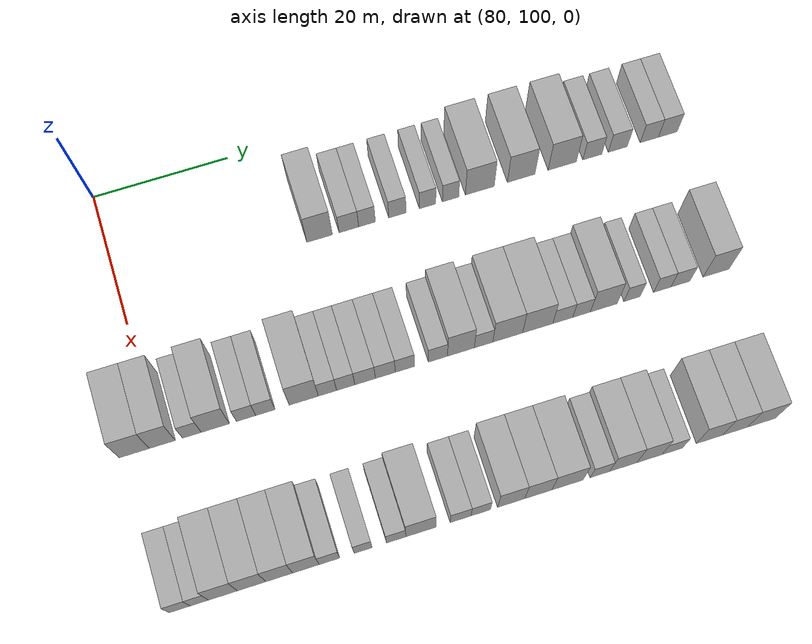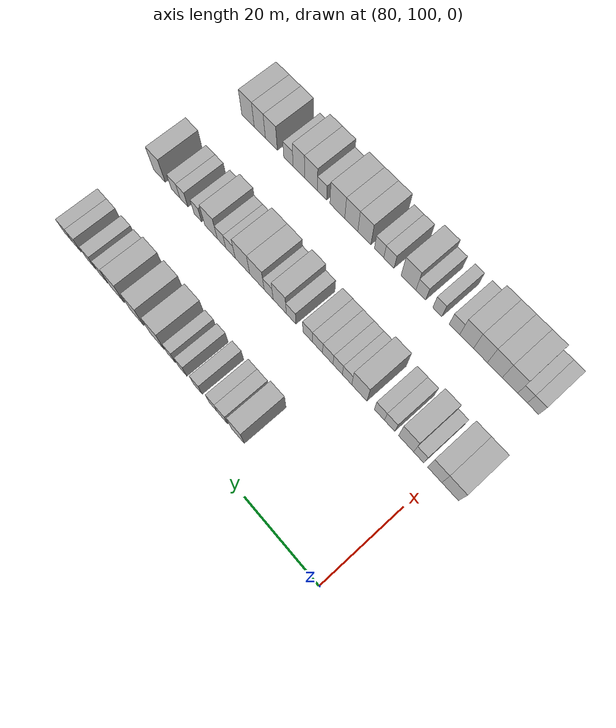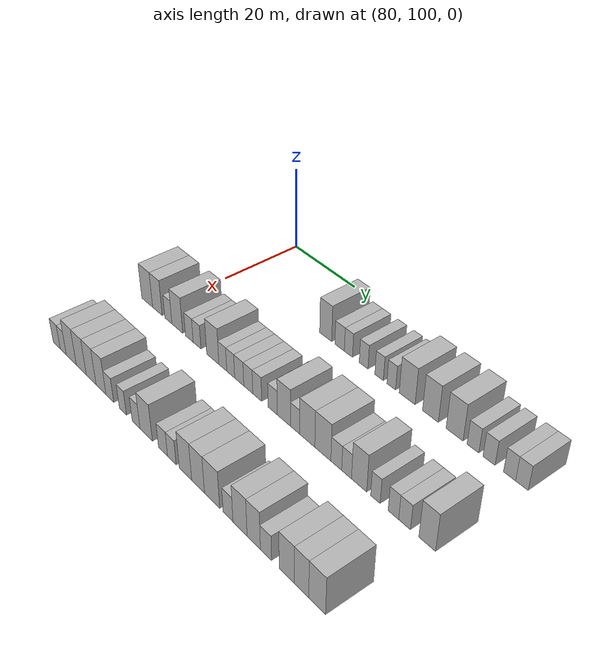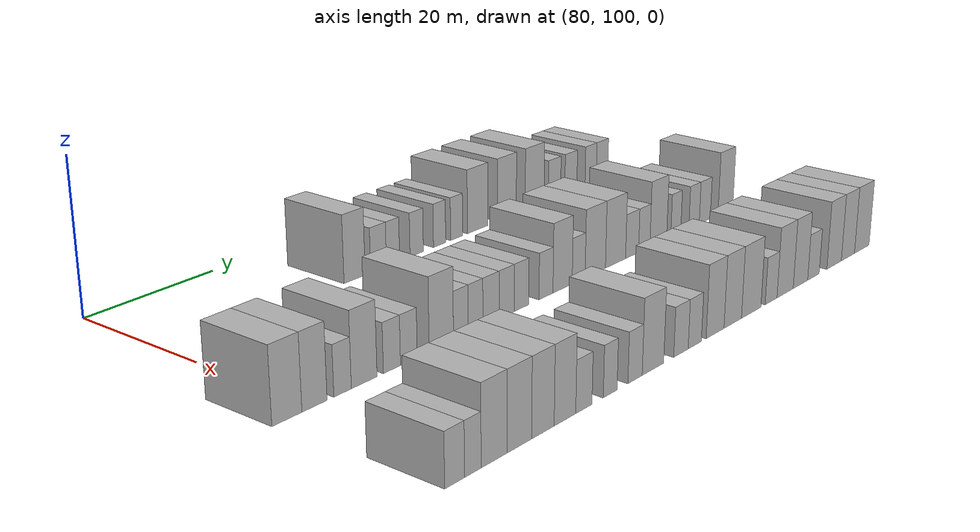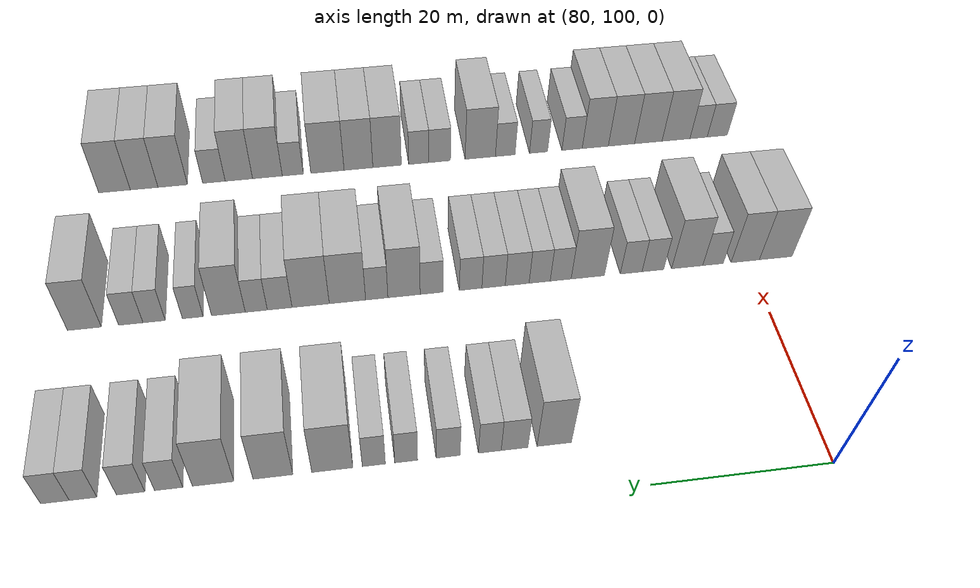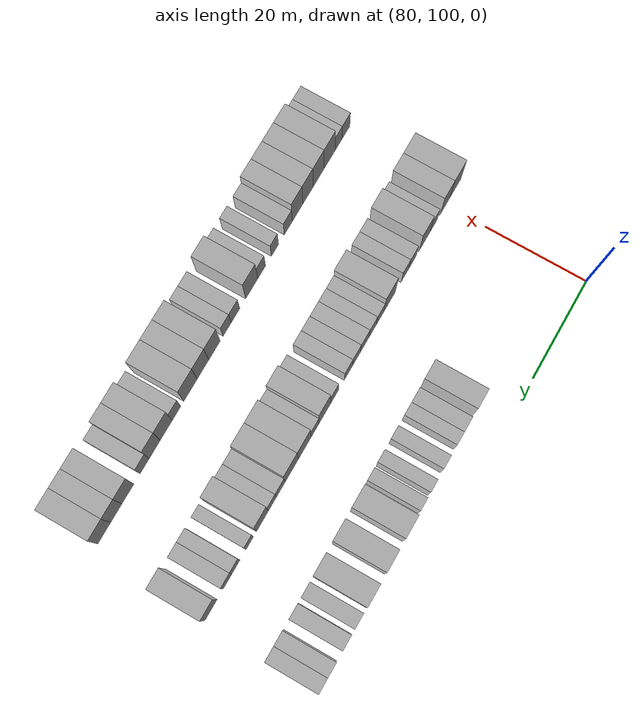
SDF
<sdf version="1.6">
 <world name="default">
  <model name="building_672">
   <static>1</static>
   <pose>91.0000 129.1376 0 0.000000 0.000000 0.000000</pose>
   <link name="link">
    <pose>0 0 4.50 0 0 0</pose>
    <collision name="collision"><geometry><box><size>10.0000 3.7799 9.0000</size></box></geometry></collision>
    <visual name="visual">
     <cast_shadows>0</cast_shadows>
     <geometry><box><size>10.0000 3.7799 9.0000</size></box></geometry>
     <material>
      <script>
       <uri>model://HANNAS_wall/materials/scripts</uri>
       <uri>model://HANNAS_wall/materials/textures</uri>
       <name>vrc/HANNAS_wall</name>
      </script>
     </material>
    </visual>
   </link>
  </model>
  <model name="building_673">
   <static>1</static>
   <pose>91.0000 133.4823 0 0.000000 0.000000 0.000000</pose>
   <link name="link">
    <pose>0 0 3.00 0 0 0</pose>
    <collision name="collision"><geometry><box><size>10.0000 2.9095 6.0000</size></box></geometry></collision>
    <visual name="visual">
     <cast_shadows>0</cast_shadows>
     <geometry><box><size>10.0000 2.9095 6.0000</size></box></geometry>
     <material>
      <script>
       <uri>model://HANNAS_wall/materials/scripts</uri>
       <uri>model://HANNAS_wall/materials/textures</uri>
       <name>vrc/HANNAS_wall</name>
      </script>
     </material>
    </visual>
   </link>
  </model>
  <model name="building_674">
   <static>1</static>
   <pose>91.0000 136.1793 0 0.000000 0.000000 0.000000</pose>
   <link name="link">
    <pose>0 0 3.00 0 0 0</pose>
    <collision name="collision"><geometry><box><size>10.0000 2.4844 6.0000</size></box></geometry></collision>
    <visual name="visual">
     <cast_shadows>0</cast_shadows>
     <geometry><box><size>10.0000 2.4844 6.0000</size></box></geometry>
     <material>
      <script>
       <uri>model://HANNAS_wall/materials/scripts</uri>
       <uri>model://HANNAS_wall/materials/textures</uri>
       <name>vrc/HANNAS_wall</name>
      </script>
     </material>
    </visual>
   </link>
  </model>
  <model name="building_675">
   <static>1</static>
   <pose>91.0000 140.7113 0 0.000000 0.000000 0.000000</pose>
   <link name="link">
    <pose>0 0 3.00 0 0 0</pose>
    <collision name="collision"><geometry><box><size>10.0000 2.5796 6.0000</size></box></geometry></collision>
    <visual name="visual">
     <cast_shadows>0</cast_shadows>
     <geometry><box><size>10.0000 2.5796 6.0000</size></box></geometry>
     <material>
      <script>
       <uri>model://HANNAS_wall/materials/scripts</uri>
       <uri>model://HANNAS_wall/materials/textures</uri>
       <name>vrc/HANNAS_wall</name>
      </script>
     </material>
    </visual>
   </link>
  </model>
  <model name="building_676">
   <static>1</static>
   <pose>91.0000 145.2244 0 0.000000 0.000000 0.000000</pose>
   <link name="link">
    <pose>0 0 3.00 0 0 0</pose>
    <collision name="collision"><geometry><box><size>10.0000 2.4467 6.0000</size></box></geometry></collision>
    <visual name="visual">
     <cast_shadows>0</cast_shadows>
     <geometry><box><size>10.0000 2.4467 6.0000</size></box></geometry>
     <material>
      <script>
       <uri>model://HANNAS_wall/materials/scripts</uri>
       <uri>model://HANNAS_wall/materials/textures</uri>
       <name>vrc/HANNAS_wall</name>
      </script>
     </material>
    </visual>
   </link>
  </model>
  <model name="building_677">
   <static>1</static>
   <pose>91.0000 148.6814 0 0.000000 0.000000 0.000000</pose>
   <link name="link">
    <pose>0 0 3.00 0 0 0</pose>
    <collision name="collision"><geometry><box><size>10.0000 2.4671 6.0000</size></box></geometry></collision>
    <visual name="visual">
     <cast_shadows>0</cast_shadows>
     <geometry><box><size>10.0000 2.4671 6.0000</size></box></geometry>
     <material>
      <script>
       <uri>model://HANNAS_wall/materials/scripts</uri>
       <uri>model://HANNAS_wall/materials/textures</uri>
       <name>vrc/HANNAS_wall</name>
      </script>
     </material>
    </visual>
   </link>
  </model>
  <model name="building_678">
   <static>1</static>
   <pose>91.0000 153.0961 0 0.000000 0.000000 0.000000</pose>
   <link name="link">
    <pose>0 0 4.50 0 0 0</pose>
    <collision name="collision"><geometry><box><size>10.0000 4.3623 9.0000</size></box></geometry></collision>
    <visual name="visual">
     <cast_shadows>0</cast_shadows>
     <geometry><box><size>10.0000 4.3623 9.0000</size></box></geometry>
     <material>
      <script>
       <uri>model://HANNAS_wall/materials/scripts</uri>
       <uri>model://HANNAS_wall/materials/textures</uri>
       <name>vrc/HANNAS_wall</name>
      </script>
     </material>
    </visual>
   </link>
  </model>
  <model name="building_679">
   <static>1</static>
   <pose>91.0000 159.3726 0 0.000000 0.000000 0.000000</pose>
   <link name="link">
    <pose>0 0 4.50 0 0 0</pose>
    <collision name="collision"><geometry><box><size>10.0000 4.1907 9.0000</size></box></geometry></collision>
    <visual name="visual">
     <cast_shadows>0</cast_shadows>
     <geometry><box><size>10.0000 4.1907 9.0000</size></box></geometry>
     <material>
      <script>
       <uri>model://HANNAS_wall/materials/scripts</uri>
       <uri>model://HANNAS_wall/materials/textures</uri>
       <name>vrc/HANNAS_wall</name>
      </script>
     </material>
    </visual>
   </link>
  </model>
  <model name="building_680">
   <static>1</static>
   <pose>91.0000 165.6266 0 0.000000 0.000000 0.000000</pose>
   <link name="link">
    <pose>0 0 4.50 0 0 0</pose>
    <collision name="collision"><geometry><box><size>10.0000 4.3174 9.0000</size></box></geometry></collision>
    <visual name="visual">
     <cast_shadows>0</cast_shadows>
     <geometry><box><size>10.0000 4.3174 9.0000</size></box></geometry>
     <material>
      <script>
       <uri>model://HANNAS_wall/materials/scripts</uri>
       <uri>model://HANNAS_wall/materials/textures</uri>
       <name>vrc/HANNAS_wall</name>
      </script>
     </material>
    </visual>
   </link>
  </model>
  <model name="building_681">
   <static>1</static>
   <pose>91.0000 170.2442 0 0.000000 0.000000 0.000000</pose>
   <link name="link">
    <pose>0 0 3.00 0 0 0</pose>
    <collision name="collision"><geometry><box><size>10.0000 2.9179 6.0000</size></box></geometry></collision>
    <visual name="visual">
     <cast_shadows>0</cast_shadows>
     <geometry><box><size>10.0000 2.9179 6.0000</size></box></geometry>
     <material>
      <script>
       <uri>model://HANNAS_wall/materials/scripts</uri>
       <uri>model://HANNAS_wall/materials/textures</uri>
       <name>vrc/HANNAS_wall</name>
      </script>
     </material>
    </visual>
   </link>
  </model>
  <model name="building_682">
   <static>1</static>
   <pose>91.0000 174.1643 0 0.000000 0.000000 0.000000</pose>
   <link name="link">
    <pose>0 0 3.00 0 0 0</pose>
    <collision name="collision"><geometry><box><size>10.0000 2.9223 6.0000</size></box></geometry></collision>
    <visual name="visual">
     <cast_shadows>0</cast_shadows>
     <geometry><box><size>10.0000 2.9223 6.0000</size></box></geometry>
     <material>
      <script>
       <uri>model://HANNAS_wall/materials/scripts</uri>
       <uri>model://HANNAS_wall/materials/textures</uri>
       <name>vrc/HANNAS_wall</name>
      </script>
     </material>
    </visual>
   </link>
  </model>
  <model name="building_683">
   <static>1</static>
   <pose>91.0000 179.0335 0 0.000000 0.000000 0.000000</pose>
   <link name="link">
    <pose>0 0 3.00 0 0 0</pose>
    <collision name="collision"><geometry><box><size>10.0000 2.8161 6.0000</size></box></geometry></collision>
    <visual name="visual">
     <cast_shadows>0</cast_shadows>
     <geometry><box><size>10.0000 2.8161 6.0000</size></box></geometry>
     <material>
      <script>
       <uri>model://HANNAS_wall/materials/scripts</uri>
       <uri>model://HANNAS_wall/materials/textures</uri>
       <name>vrc/HANNAS_wall</name>
      </script>
     </material>
    </visual>
   </link>
  </model>
  <model name="building_684">
   <static>1</static>
   <pose>91.0000 181.8995 0 0.000000 0.000000 0.000000</pose>
   <link name="link">
    <pose>0 0 3.00 0 0 0</pose>
    <collision name="collision"><geometry><box><size>10.0000 2.9157 6.0000</size></box></geometry></collision>
    <visual name="visual">
     <cast_shadows>0</cast_shadows>
     <geometry><box><size>10.0000 2.9157 6.0000</size></box></geometry>
     <material>
      <script>
       <uri>model://HANNAS_wall/materials/scripts</uri>
       <uri>model://HANNAS_wall/materials/textures</uri>
       <name>vrc/HANNAS_wall</name>
      </script>
     </material>
    </visual>
   </link>
  </model>
  <model name="building_859">
   <static>1</static>
   <pose>113.0000 96.4698 0 0.000000 0.000000 0.000000</pose>
   <link name="link">
    <pose>0 0 4.50 0 0 0</pose>
    <collision name="collision"><geometry><box><size>10.0000 4.2123 9.0000</size></box></geometry></collision>
    <visual name="visual">
     <cast_shadows>0</cast_shadows>
     <geometry><box><size>10.0000 4.2123 9.0000</size></box></geometry>
     <material>
      <script>
       <uri>model://HANNAS_wall/materials/scripts</uri>
       <uri>model://HANNAS_wall/materials/textures</uri>
       <name>vrc/HANNAS_wall</name>
      </script>
     </material>
    </visual>
   </link>
  </model>
  <model name="building_860">
   <static>1</static>
   <pose>113.0000 100.3964 0 0.000000 0.000000 0.000000</pose>
   <link name="link">
    <pose>0 0 4.50 0 0 0</pose>
    <collision name="collision"><geometry><box><size>10.0000 3.6409 9.0000</size></box></geometry></collision>
    <visual name="visual">
     <cast_shadows>0</cast_shadows>
     <geometry><box><size>10.0000 3.6409 9.0000</size></box></geometry>
     <material>
      <script>
       <uri>model://HANNAS_wall/materials/scripts</uri>
       <uri>model://HANNAS_wall/materials/textures</uri>
       <name>vrc/HANNAS_wall</name>
      </script>
     </material>
    </visual>
   </link>
  </model>
  <model name="building_861">
   <static>1</static>
   <pose>113.0000 104.5297 0 0.000000 0.000000 0.000000</pose>
   <link name="link">
    <pose>0 0 3.00 0 0 0</pose>
    <collision name="collision"><geometry><box><size>10.0000 2.6257 6.0000</size></box></geometry></collision>
    <visual name="visual">
     <cast_shadows>0</cast_shadows>
     <geometry><box><size>10.0000 2.6257 6.0000</size></box></geometry>
     <material>
      <script>
       <uri>model://HANNAS_wall/materials/scripts</uri>
       <uri>model://HANNAS_wall/materials/textures</uri>
       <name>vrc/HANNAS_wall</name>
      </script>
     </material>
    </visual>
   </link>
  </model>
  <model name="building_862">
   <static>1</static>
   <pose>113.0000 107.8255 0 0.000000 0.000000 0.000000</pose>
   <link name="link">
    <pose>0 0 4.50 0 0 0</pose>
    <collision name="collision"><geometry><box><size>10.0000 3.9659 9.0000</size></box></geometry></collision>
    <visual name="visual">
     <cast_shadows>0</cast_shadows>
     <geometry><box><size>10.0000 3.9659 9.0000</size></box></geometry>
     <material>
      <script>
       <uri>model://HANNAS_wall/materials/scripts</uri>
       <uri>model://HANNAS_wall/materials/textures</uri>
       <name>vrc/HANNAS_wall</name>
      </script>
     </material>
    </visual>
   </link>
  </model>
  <model name="building_863">
   <static>1</static>
   <pose>113.0000 112.1782 0 0.000000 0.000000 0.000000</pose>
   <link name="link">
    <pose>0 0 3.00 0 0 0</pose>
    <collision name="collision"><geometry><box><size>10.0000 2.7395 6.0000</size></box></geometry></collision>
    <visual name="visual">
     <cast_shadows>0</cast_shadows>
     <geometry><box><size>10.0000 2.7395 6.0000</size></box></geometry>
     <material>
      <script>
       <uri>model://HANNAS_wall/materials/scripts</uri>
       <uri>model://HANNAS_wall/materials/textures</uri>
       <name>vrc/HANNAS_wall</name>
      </script>
     </material>
    </visual>
   </link>
  </model>
  <model name="building_864">
   <static>1</static>
   <pose>113.0000 114.9187 0 0.000000 0.000000 0.000000</pose>
   <link name="link">
    <pose>0 0 3.00 0 0 0</pose>
    <collision name="collision"><geometry><box><size>10.0000 2.7417 6.0000</size></box></geometry></collision>
    <visual name="visual">
     <cast_shadows>0</cast_shadows>
     <geometry><box><size>10.0000 2.7417 6.0000</size></box></geometry>
     <material>
      <script>
       <uri>model://HANNAS_wall/materials/scripts</uri>
       <uri>model://HANNAS_wall/materials/textures</uri>
       <name>vrc/HANNAS_wall</name>
      </script>
     </material>
    </visual>
   </link>
  </model>
  <model name="building_865">
   <static>1</static>
   <pose>113.0000 120.3689 0 0.000000 0.000000 0.000000</pose>
   <link name="link">
    <pose>0 0 4.50 0 0 0</pose>
    <collision name="collision"><geometry><box><size>10.0000 4.1587 9.0000</size></box></geometry></collision>
    <visual name="visual">
     <cast_shadows>0</cast_shadows>
     <geometry><box><size>10.0000 4.1587 9.0000</size></box></geometry>
     <material>
      <script>
       <uri>model://HANNAS_wall/materials/scripts</uri>
       <uri>model://HANNAS_wall/materials/textures</uri>
       <name>vrc/HANNAS_wall</name>
      </script>
     </material>
    </visual>
   </link>
  </model>
  <model name="building_866">
   <static>1</static>
   <pose>113.0000 123.7522 0 0.000000 0.000000 0.000000</pose>
   <link name="link">
    <pose>0 0 3.00 0 0 0</pose>
    <collision name="collision"><geometry><box><size>10.0000 2.6078 6.0000</size></box></geometry></collision>
    <visual name="visual">
     <cast_shadows>0</cast_shadows>
     <geometry><box><size>10.0000 2.6078 6.0000</size></box></geometry>
     <material>
      <script>
       <uri>model://HANNAS_wall/materials/scripts</uri>
       <uri>model://HANNAS_wall/materials/textures</uri>
       <name>vrc/HANNAS_wall</name>
      </script>
     </material>
    </visual>
   </link>
  </model>
  <model name="building_867">
   <static>1</static>
   <pose>113.0000 126.3635 0 0.000000 0.000000 0.000000</pose>
   <link name="link">
    <pose>0 0 3.00 0 0 0</pose>
    <collision name="collision"><geometry><box><size>10.0000 2.6148 6.0000</size></box></geometry></collision>
    <visual name="visual">
     <cast_shadows>0</cast_shadows>
     <geometry><box><size>10.0000 2.6148 6.0000</size></box></geometry>
     <material>
      <script>
       <uri>model://HANNAS_wall/materials/scripts</uri>
       <uri>model://HANNAS_wall/materials/textures</uri>
       <name>vrc/HANNAS_wall</name>
      </script>
     </material>
    </visual>
   </link>
  </model>
  <model name="building_868">
   <static>1</static>
   <pose>113.0000 129.1506 0 0.000000 0.000000 0.000000</pose>
   <link name="link">
    <pose>0 0 3.00 0 0 0</pose>
    <collision name="collision"><geometry><box><size>10.0000 2.9593 6.0000</size></box></geometry></collision>
    <visual name="visual">
     <cast_shadows>0</cast_shadows>
     <geometry><box><size>10.0000 2.9593 6.0000</size></box></geometry>
     <material>
      <script>
       <uri>model://HANNAS_wall/materials/scripts</uri>
       <uri>model://HANNAS_wall/materials/textures</uri>
       <name>vrc/HANNAS_wall</name>
      </script>
     </material>
    </visual>
   </link>
  </model>
  <model name="building_869">
   <static>1</static>
   <pose>113.0000 132.0668 0 0.000000 0.000000 0.000000</pose>
   <link name="link">
    <pose>0 0 3.00 0 0 0</pose>
    <collision name="collision"><geometry><box><size>10.0000 2.8731 6.0000</size></box></geometry></collision>
    <visual name="visual">
     <cast_shadows>0</cast_shadows>
     <geometry><box><size>10.0000 2.8731 6.0000</size></box></geometry>
     <material>
      <script>
       <uri>model://HANNAS_wall/materials/scripts</uri>
       <uri>model://HANNAS_wall/materials/textures</uri>
       <name>vrc/HANNAS_wall</name>
      </script>
     </material>
    </visual>
   </link>
  </model>
  <model name="building_870">
   <static>1</static>
   <pose>113.0000 134.8924 0 0.000000 0.000000 0.000000</pose>
   <link name="link">
    <pose>0 0 3.00 0 0 0</pose>
    <collision name="collision"><geometry><box><size>10.0000 2.7780 6.0000</size></box></geometry></collision>
    <visual name="visual">
     <cast_shadows>0</cast_shadows>
     <geometry><box><size>10.0000 2.7780 6.0000</size></box></geometry>
     <material>
      <script>
       <uri>model://HANNAS_wall/materials/scripts</uri>
       <uri>model://HANNAS_wall/materials/textures</uri>
       <name>vrc/HANNAS_wall</name>
      </script>
     </material>
    </visual>
   </link>
  </model>
  <model name="building_871">
   <static>1</static>
   <pose>113.0000 139.6704 0 0.000000 0.000000 0.000000</pose>
   <link name="link">
    <pose>0 0 3.00 0 0 0</pose>
    <collision name="collision"><geometry><box><size>10.0000 2.7781 6.0000</size></box></geometry></collision>
    <visual name="visual">
     <cast_shadows>0</cast_shadows>
     <geometry><box><size>10.0000 2.7781 6.0000</size></box></geometry>
     <material>
      <script>
       <uri>model://HANNAS_wall/materials/scripts</uri>
       <uri>model://HANNAS_wall/materials/textures</uri>
       <name>vrc/HANNAS_wall</name>
      </script>
     </material>
    </visual>
   </link>
  </model>
  <model name="building_872">
   <static>1</static>
   <pose>113.0000 143.0177 0 0.000000 0.000000 0.000000</pose>
   <link name="link">
    <pose>0 0 4.50 0 0 0</pose>
    <collision name="collision"><geometry><box><size>10.0000 3.9165 9.0000</size></box></geometry></collision>
    <visual name="visual">
     <cast_shadows>0</cast_shadows>
     <geometry><box><size>10.0000 3.9165 9.0000</size></box></geometry>
     <material>
      <script>
       <uri>model://HANNAS_wall/materials/scripts</uri>
       <uri>model://HANNAS_wall/materials/textures</uri>
       <name>vrc/HANNAS_wall</name>
      </script>
     </material>
    </visual>
   </link>
  </model>
  <model name="building_873">
   <static>1</static>
   <pose>113.0000 146.3214 0 0.000000 0.000000 0.000000</pose>
   <link name="link">
    <pose>0 0 3.00 0 0 0</pose>
    <collision name="collision"><geometry><box><size>10.0000 2.6908 6.0000</size></box></geometry></collision>
    <visual name="visual">
     <cast_shadows>0</cast_shadows>
     <geometry><box><size>10.0000 2.6908 6.0000</size></box></geometry>
     <material>
      <script>
       <uri>model://HANNAS_wall/materials/scripts</uri>
       <uri>model://HANNAS_wall/materials/textures</uri>
       <name>vrc/HANNAS_wall</name>
      </script>
     </material>
    </visual>
   </link>
  </model>
  <model name="building_874">
   <static>1</static>
   <pose>113.0000 149.8511 0 0.000000 0.000000 0.000000</pose>
   <link name="link">
    <pose>0 0 4.50 0 0 0</pose>
    <collision name="collision"><geometry><box><size>10.0000 4.3688 9.0000</size></box></geometry></collision>
    <visual name="visual">
     <cast_shadows>0</cast_shadows>
     <geometry><box><size>10.0000 4.3688 9.0000</size></box></geometry>
     <material>
      <script>
       <uri>model://HANNAS_wall/materials/scripts</uri>
       <uri>model://HANNAS_wall/materials/textures</uri>
       <name>vrc/HANNAS_wall</name>
      </script>
     </material>
    </visual>
   </link>
  </model>
  <model name="building_875">
   <static>1</static>
   <pose>113.0000 154.2616 0 0.000000 0.000000 0.000000</pose>
   <link name="link">
    <pose>0 0 4.50 0 0 0</pose>
    <collision name="collision"><geometry><box><size>10.0000 4.4522 9.0000</size></box></geometry></collision>
    <visual name="visual">
     <cast_shadows>0</cast_shadows>
     <geometry><box><size>10.0000 4.4522 9.0000</size></box></geometry>
     <material>
      <script>
       <uri>model://HANNAS_wall/materials/scripts</uri>
       <uri>model://HANNAS_wall/materials/textures</uri>
       <name>vrc/HANNAS_wall</name>
      </script>
     </material>
    </visual>
   </link>
  </model>
  <model name="building_876">
   <static>1</static>
   <pose>113.0000 157.9608 0 0.000000 0.000000 0.000000</pose>
   <link name="link">
    <pose>0 0 3.00 0 0 0</pose>
    <collision name="collision"><geometry><box><size>10.0000 2.9462 6.0000</size></box></geometry></collision>
    <visual name="visual">
     <cast_shadows>0</cast_shadows>
     <geometry><box><size>10.0000 2.9462 6.0000</size></box></geometry>
     <material>
      <script>
       <uri>model://HANNAS_wall/materials/scripts</uri>
       <uri>model://HANNAS_wall/materials/textures</uri>
       <name>vrc/HANNAS_wall</name>
      </script>
     </material>
    </visual>
   </link>
  </model>
  <model name="building_877">
   <static>1</static>
   <pose>113.0000 160.7417 0 0.000000 0.000000 0.000000</pose>
   <link name="link">
    <pose>0 0 3.00 0 0 0</pose>
    <collision name="collision"><geometry><box><size>10.0000 2.6155 6.0000</size></box></geometry></collision>
    <visual name="visual">
     <cast_shadows>0</cast_shadows>
     <geometry><box><size>10.0000 2.6155 6.0000</size></box></geometry>
     <material>
      <script>
       <uri>model://HANNAS_wall/materials/scripts</uri>
       <uri>model://HANNAS_wall/materials/textures</uri>
       <name>vrc/HANNAS_wall</name>
      </script>
     </material>
    </visual>
   </link>
  </model>
  <model name="building_878">
   <static>1</static>
   <pose>113.0000 164.0387 0 0.000000 0.000000 0.000000</pose>
   <link name="link">
    <pose>0 0 4.50 0 0 0</pose>
    <collision name="collision"><geometry><box><size>10.0000 3.9785 9.0000</size></box></geometry></collision>
    <visual name="visual">
     <cast_shadows>0</cast_shadows>
     <geometry><box><size>10.0000 3.9785 9.0000</size></box></geometry>
     <material>
      <script>
       <uri>model://HANNAS_wall/materials/scripts</uri>
       <uri>model://HANNAS_wall/materials/textures</uri>
       <name>vrc/HANNAS_wall</name>
      </script>
     </material>
    </visual>
   </link>
  </model>
  <model name="building_879">
   <static>1</static>
   <pose>113.0000 168.2429 0 0.000000 0.000000 0.000000</pose>
   <link name="link">
    <pose>0 0 3.00 0 0 0</pose>
    <collision name="collision"><geometry><box><size>10.0000 2.4299 6.0000</size></box></geometry></collision>
    <visual name="visual">
     <cast_shadows>0</cast_shadows>
     <geometry><box><size>10.0000 2.4299 6.0000</size></box></geometry>
     <material>
      <script>
       <uri>model://HANNAS_wall/materials/scripts</uri>
       <uri>model://HANNAS_wall/materials/textures</uri>
       <name>vrc/HANNAS_wall</name>
      </script>
     </material>
    </visual>
   </link>
  </model>
  <model name="building_880">
   <static>1</static>
   <pose>113.0000 172.7592 0 0.000000 0.000000 0.000000</pose>
   <link name="link">
    <pose>0 0 3.00 0 0 0</pose>
    <collision name="collision"><geometry><box><size>10.0000 2.6026 6.0000</size></box></geometry></collision>
    <visual name="visual">
     <cast_shadows>0</cast_shadows>
     <geometry><box><size>10.0000 2.6026 6.0000</size></box></geometry>
     <material>
      <script>
       <uri>model://HANNAS_wall/materials/scripts</uri>
       <uri>model://HANNAS_wall/materials/textures</uri>
       <name>vrc/HANNAS_wall</name>
      </script>
     </material>
    </visual>
   </link>
  </model>
  <model name="building_881">
   <static>1</static>
   <pose>113.0000 175.4812 0 0.000000 0.000000 0.000000</pose>
   <link name="link">
    <pose>0 0 3.00 0 0 0</pose>
    <collision name="collision"><geometry><box><size>10.0000 2.8413 6.0000</size></box></geometry></collision>
    <visual name="visual">
     <cast_shadows>0</cast_shadows>
     <geometry><box><size>10.0000 2.8413 6.0000</size></box></geometry>
     <material>
      <script>
       <uri>model://HANNAS_wall/materials/scripts</uri>
       <uri>model://HANNAS_wall/materials/textures</uri>
       <name>vrc/HANNAS_wall</name>
      </script>
     </material>
    </visual>
   </link>
  </model>
  <model name="building_882">
   <static>1</static>
   <pose>113.0000 180.8557 0 0.000000 0.000000 0.000000</pose>
   <link name="link">
    <pose>0 0 4.50 0 0 0</pose>
    <collision name="collision"><geometry><box><size>10.0000 3.9076 9.0000</size></box></geometry></collision>
    <visual name="visual">
     <cast_shadows>0</cast_shadows>
     <geometry><box><size>10.0000 3.9076 9.0000</size></box></geometry>
     <material>
      <script>
       <uri>model://HANNAS_wall/materials/scripts</uri>
       <uri>model://HANNAS_wall/materials/textures</uri>
       <name>vrc/HANNAS_wall</name>
      </script>
     </material>
    </visual>
   </link>
  </model>
  <model name="building_1047">
   <static>1</static>
   <pose>135.0000 97.0185 0 0.000000 0.000000 0.000000</pose>
   <link name="link">
    <pose>0 0 3.00 0 0 0</pose>
    <collision name="collision"><geometry><box><size>10.0000 2.8624 6.0000</size></box></geometry></collision>
    <visual name="visual">
     <cast_shadows>0</cast_shadows>
     <geometry><box><size>10.0000 2.8624 6.0000</size></box></geometry>
     <material>
      <script>
       <uri>model://HANNAS_wall/materials/scripts</uri>
       <uri>model://HANNAS_wall/materials/textures</uri>
       <name>vrc/HANNAS_wall</name>
      </script>
     </material>
    </visual>
   </link>
  </model>
  <model name="building_1048">
   <static>1</static>
   <pose>135.0000 99.6762 0 0.000000 0.000000 0.000000</pose>
   <link name="link">
    <pose>0 0 3.00 0 0 0</pose>
    <collision name="collision"><geometry><box><size>10.0000 2.4530 6.0000</size></box></geometry></collision>
    <visual name="visual">
     <cast_shadows>0</cast_shadows>
     <geometry><box><size>10.0000 2.4530 6.0000</size></box></geometry>
     <material>
      <script>
       <uri>model://HANNAS_wall/materials/scripts</uri>
       <uri>model://HANNAS_wall/materials/textures</uri>
       <name>vrc/HANNAS_wall</name>
      </script>
     </material>
    </visual>
   </link>
  </model>
  <model name="building_1049">
   <static>1</static>
   <pose>135.0000 102.8780 0 0.000000 0.000000 0.000000</pose>
   <link name="link">
    <pose>0 0 4.50 0 0 0</pose>
    <collision name="collision"><geometry><box><size>10.0000 3.9507 9.0000</size></box></geometry></collision>
    <visual name="visual">
     <cast_shadows>0</cast_shadows>
     <geometry><box><size>10.0000 3.9507 9.0000</size></box></geometry>
     <material>
      <script>
       <uri>model://HANNAS_wall/materials/scripts</uri>
       <uri>model://HANNAS_wall/materials/textures</uri>
       <name>vrc/HANNAS_wall</name>
      </script>
     </material>
    </visual>
   </link>
  </model>
  <model name="building_1050">
   <static>1</static>
   <pose>135.0000 106.7922 0 0.000000 0.000000 0.000000</pose>
   <link name="link">
    <pose>0 0 4.50 0 0 0</pose>
    <collision name="collision"><geometry><box><size>10.0000 3.8776 9.0000</size></box></geometry></collision>
    <visual name="visual">
     <cast_shadows>0</cast_shadows>
     <geometry><box><size>10.0000 3.8776 9.0000</size></box></geometry>
     <material>
      <script>
       <uri>model://HANNAS_wall/materials/scripts</uri>
       <uri>model://HANNAS_wall/materials/textures</uri>
       <name>vrc/HANNAS_wall</name>
      </script>
     </material>
    </visual>
   </link>
  </model>
  <model name="building_1051">
   <static>1</static>
   <pose>135.0000 110.5779 0 0.000000 0.000000 0.000000</pose>
   <link name="link">
    <pose>0 0 4.50 0 0 0</pose>
    <collision name="collision"><geometry><box><size>10.0000 3.6939 9.0000</size></box></geometry></collision>
    <visual name="visual">
     <cast_shadows>0</cast_shadows>
     <geometry><box><size>10.0000 3.6939 9.0000</size></box></geometry>
     <material>
      <script>
       <uri>model://HANNAS_wall/materials/scripts</uri>
       <uri>model://HANNAS_wall/materials/textures</uri>
       <name>vrc/HANNAS_wall</name>
      </script>
     </material>
    </visual>
   </link>
  </model>
  <model name="building_1052">
   <static>1</static>
   <pose>135.0000 114.2510 0 0.000000 0.000000 0.000000</pose>
   <link name="link">
    <pose>0 0 4.50 0 0 0</pose>
    <collision name="collision"><geometry><box><size>10.0000 3.6522 9.0000</size></box></geometry></collision>
    <visual name="visual">
     <cast_shadows>0</cast_shadows>
     <geometry><box><size>10.0000 3.6522 9.0000</size></box></geometry>
     <material>
      <script>
       <uri>model://HANNAS_wall/materials/scripts</uri>
       <uri>model://HANNAS_wall/materials/textures</uri>
       <name>vrc/HANNAS_wall</name>
      </script>
     </material>
    </visual>
   </link>
  </model>
  <model name="building_1053">
   <static>1</static>
   <pose>135.0000 117.4906 0 0.000000 0.000000 0.000000</pose>
   <link name="link">
    <pose>0 0 3.00 0 0 0</pose>
    <collision name="collision"><geometry><box><size>10.0000 2.8271 6.0000</size></box></geometry></collision>
    <visual name="visual">
     <cast_shadows>0</cast_shadows>
     <geometry><box><size>10.0000 2.8271 6.0000</size></box></geometry>
     <material>
      <script>
       <uri>model://HANNAS_wall/materials/scripts</uri>
       <uri>model://HANNAS_wall/materials/textures</uri>
       <name>vrc/HANNAS_wall</name>
      </script>
     </material>
    </visual>
   </link>
  </model>
  <model name="building_1054">
   <static>1</static>
   <pose>135.0000 122.1537 0 0.000000 0.000000 0.000000</pose>
   <link name="link">
    <pose>0 0 3.00 0 0 0</pose>
    <collision name="collision"><geometry><box><size>10.0000 2.4992 6.0000</size></box></geometry></collision>
    <visual name="visual">
     <cast_shadows>0</cast_shadows>
     <geometry><box><size>10.0000 2.4992 6.0000</size></box></geometry>
     <material>
      <script>
       <uri>model://HANNAS_wall/materials/scripts</uri>
       <uri>model://HANNAS_wall/materials/textures</uri>
       <name>vrc/HANNAS_wall</name>
      </script>
     </material>
    </visual>
   </link>
  </model>
  <model name="building_1055">
   <static>1</static>
   <pose>135.0000 126.7517 0 0.000000 0.000000 0.000000</pose>
   <link name="link">
    <pose>0 0 3.00 0 0 0</pose>
    <collision name="collision"><geometry><box><size>10.0000 2.6967 6.0000</size></box></geometry></collision>
    <visual name="visual">
     <cast_shadows>0</cast_shadows>
     <geometry><box><size>10.0000 2.6967 6.0000</size></box></geometry>
     <material>
      <script>
       <uri>model://HANNAS_wall/materials/scripts</uri>
       <uri>model://HANNAS_wall/materials/textures</uri>
       <name>vrc/HANNAS_wall</name>
      </script>
     </material>
    </visual>
   </link>
  </model>
  <model name="building_1056">
   <static>1</static>
   <pose>135.0000 130.1864 0 0.000000 0.000000 0.000000</pose>
   <link name="link">
    <pose>0 0 4.50 0 0 0</pose>
    <collision name="collision"><geometry><box><size>10.0000 4.1728 9.0000</size></box></geometry></collision>
    <visual name="visual">
     <cast_shadows>0</cast_shadows>
     <geometry><box><size>10.0000 4.1728 9.0000</size></box></geometry>
     <material>
      <script>
       <uri>model://HANNAS_wall/materials/scripts</uri>
       <uri>model://HANNAS_wall/materials/textures</uri>
       <name>vrc/HANNAS_wall</name>
      </script>
     </material>
    </visual>
   </link>
  </model>
  <model name="building_1057">
   <static>1</static>
   <pose>135.0000 135.7404 0 0.000000 0.000000 0.000000</pose>
   <link name="link">
    <pose>0 0 3.00 0 0 0</pose>
    <collision name="collision"><geometry><box><size>10.0000 2.9352 6.0000</size></box></geometry></collision>
    <visual name="visual">
     <cast_shadows>0</cast_shadows>
     <geometry><box><size>10.0000 2.9352 6.0000</size></box></geometry>
     <material>
      <script>
       <uri>model://HANNAS_wall/materials/scripts</uri>
       <uri>model://HANNAS_wall/materials/textures</uri>
       <name>vrc/HANNAS_wall</name>
      </script>
     </material>
    </visual>
   </link>
  </model>
  <model name="building_1058">
   <static>1</static>
   <pose>135.0000 138.5769 0 0.000000 0.000000 0.000000</pose>
   <link name="link">
    <pose>0 0 3.00 0 0 0</pose>
    <collision name="collision"><geometry><box><size>10.0000 2.7378 6.0000</size></box></geometry></collision>
    <visual name="visual">
     <cast_shadows>0</cast_shadows>
     <geometry><box><size>10.0000 2.7378 6.0000</size></box></geometry>
     <material>
      <script>
       <uri>model://HANNAS_wall/materials/scripts</uri>
       <uri>model://HANNAS_wall/materials/textures</uri>
       <name>vrc/HANNAS_wall</name>
      </script>
     </material>
    </visual>
   </link>
  </model>
  <model name="building_1059">
   <static>1</static>
   <pose>135.0000 142.8674 0 0.000000 0.000000 0.000000</pose>
   <link name="link">
    <pose>0 0 4.50 0 0 0</pose>
    <collision name="collision"><geometry><box><size>10.0000 3.8431 9.0000</size></box></geometry></collision>
    <visual name="visual">
     <cast_shadows>0</cast_shadows>
     <geometry><box><size>10.0000 3.8431 9.0000</size></box></geometry>
     <material>
      <script>
       <uri>model://HANNAS_wall/materials/scripts</uri>
       <uri>model://HANNAS_wall/materials/textures</uri>
       <name>vrc/HANNAS_wall</name>
      </script>
     </material>
    </visual>
   </link>
  </model>
  <model name="building_1060">
   <static>1</static>
   <pose>135.0000 146.7263 0 0.000000 0.000000 0.000000</pose>
   <link name="link">
    <pose>0 0 4.50 0 0 0</pose>
    <collision name="collision"><geometry><box><size>10.0000 3.8747 9.0000</size></box></geometry></collision>
    <visual name="visual">
     <cast_shadows>0</cast_shadows>
     <geometry><box><size>10.0000 3.8747 9.0000</size></box></geometry>
     <material>
      <script>
       <uri>model://HANNAS_wall/materials/scripts</uri>
       <uri>model://HANNAS_wall/materials/textures</uri>
       <name>vrc/HANNAS_wall</name>
      </script>
     </material>
    </visual>
   </link>
  </model>
  <model name="building_1061">
   <static>1</static>
   <pose>135.0000 150.8890 0 0.000000 0.000000 0.000000</pose>
   <link name="link">
    <pose>0 0 4.50 0 0 0</pose>
    <collision name="collision"><geometry><box><size>10.0000 4.4505 9.0000</size></box></geometry></collision>
    <visual name="visual">
     <cast_shadows>0</cast_shadows>
     <geometry><box><size>10.0000 4.4505 9.0000</size></box></geometry>
     <material>
      <script>
       <uri>model://HANNAS_wall/materials/scripts</uri>
       <uri>model://HANNAS_wall/materials/textures</uri>
       <name>vrc/HANNAS_wall</name>
      </script>
     </material>
    </visual>
   </link>
  </model>
  <model name="building_1062">
   <static>1</static>
   <pose>135.0000 155.5158 0 0.000000 0.000000 0.000000</pose>
   <link name="link">
    <pose>0 0 3.00 0 0 0</pose>
    <collision name="collision"><geometry><box><size>10.0000 2.8032 6.0000</size></box></geometry></collision>
    <visual name="visual">
     <cast_shadows>0</cast_shadows>
     <geometry><box><size>10.0000 2.8032 6.0000</size></box></geometry>
     <material>
      <script>
       <uri>model://HANNAS_wall/materials/scripts</uri>
       <uri>model://HANNAS_wall/materials/textures</uri>
       <name>vrc/HANNAS_wall</name>
      </script>
     </material>
    </visual>
   </link>
  </model>
  <model name="building_1063">
   <static>1</static>
   <pose>135.0000 158.8881 0 0.000000 0.000000 0.000000</pose>
   <link name="link">
    <pose>0 0 4.50 0 0 0</pose>
    <collision name="collision"><geometry><box><size>10.0000 3.9414 9.0000</size></box></geometry></collision>
    <visual name="visual">
     <cast_shadows>0</cast_shadows>
     <geometry><box><size>10.0000 3.9414 9.0000</size></box></geometry>
     <material>
      <script>
       <uri>model://HANNAS_wall/materials/scripts</uri>
       <uri>model://HANNAS_wall/materials/textures</uri>
       <name>vrc/HANNAS_wall</name>
      </script>
     </material>
    </visual>
   </link>
  </model>
  <model name="building_1064">
   <static>1</static>
   <pose>135.0000 162.6664 0 0.000000 0.000000 0.000000</pose>
   <link name="link">
    <pose>0 0 4.50 0 0 0</pose>
    <collision name="collision"><geometry><box><size>10.0000 3.6152 9.0000</size></box></geometry></collision>
    <visual name="visual">
     <cast_shadows>0</cast_shadows>
     <geometry><box><size>10.0000 3.6152 9.0000</size></box></geometry>
     <material>
      <script>
       <uri>model://HANNAS_wall/materials/scripts</uri>
       <uri>model://HANNAS_wall/materials/textures</uri>
       <name>vrc/HANNAS_wall</name>
      </script>
     </material>
    </visual>
   </link>
  </model>
  <model name="building_1065">
   <static>1</static>
   <pose>135.0000 165.9525 0 0.000000 0.000000 0.000000</pose>
   <link name="link">
    <pose>0 0 3.00 0 0 0</pose>
    <collision name="collision"><geometry><box><size>10.0000 2.9570 6.0000</size></box></geometry></collision>
    <visual name="visual">
     <cast_shadows>0</cast_shadows>
     <geometry><box><size>10.0000 2.9570 6.0000</size></box></geometry>
     <material>
      <script>
       <uri>model://HANNAS_wall/materials/scripts</uri>
       <uri>model://HANNAS_wall/materials/textures</uri>
       <name>vrc/HANNAS_wall</name>
      </script>
     </material>
    </visual>
   </link>
  </model>
  <model name="building_1066">
   <static>1</static>
   <pose>135.0000 171.3568 0 0.000000 0.000000 0.000000</pose>
   <link name="link">
    <pose>0 0 4.50 0 0 0</pose>
    <collision name="collision"><geometry><box><size>10.0000 3.8516 9.0000</size></box></geometry></collision>
    <visual name="visual">
     <cast_shadows>0</cast_shadows>
     <geometry><box><size>10.0000 3.8516 9.0000</size></box></geometry>
     <material>
      <script>
       <uri>model://HANNAS_wall/materials/scripts</uri>
       <uri>model://HANNAS_wall/materials/textures</uri>
       <name>vrc/HANNAS_wall</name>
      </script>
     </material>
    </visual>
   </link>
  </model>
  <model name="building_1067">
   <static>1</static>
   <pose>135.0000 175.0828 0 0.000000 0.000000 0.000000</pose>
   <link name="link">
    <pose>0 0 4.50 0 0 0</pose>
    <collision name="collision"><geometry><box><size>10.0000 3.6004 9.0000</size></box></geometry></collision>
    <visual name="visual">
     <cast_shadows>0</cast_shadows>
     <geometry><box><size>10.0000 3.6004 9.0000</size></box></geometry>
     <material>
      <script>
       <uri>model://HANNAS_wall/materials/scripts</uri>
       <uri>model://HANNAS_wall/materials/textures</uri>
       <name>vrc/HANNAS_wall</name>
      </script>
     </material>
    </visual>
   </link>
  </model>
  <model name="building_1068">
   <static>1</static>
   <pose>135.0000 178.9250 0 0.000000 0.000000 0.000000</pose>
   <link name="link">
    <pose>0 0 4.50 0 0 0</pose>
    <collision name="collision"><geometry><box><size>10.0000 4.0841 9.0000</size></box></geometry></collision>
    <visual name="visual">
     <cast_shadows>0</cast_shadows>
     <geometry><box><size>10.0000 4.0841 9.0000</size></box></geometry>
     <material>
      <script>
       <uri>model://HANNAS_wall/materials/scripts</uri>
       <uri>model://HANNAS_wall/materials/textures</uri>
       <name>vrc/HANNAS_wall</name>
      </script>
     </material>
    </visual>
   </link>
  </model>
 </world>
</sdf>
